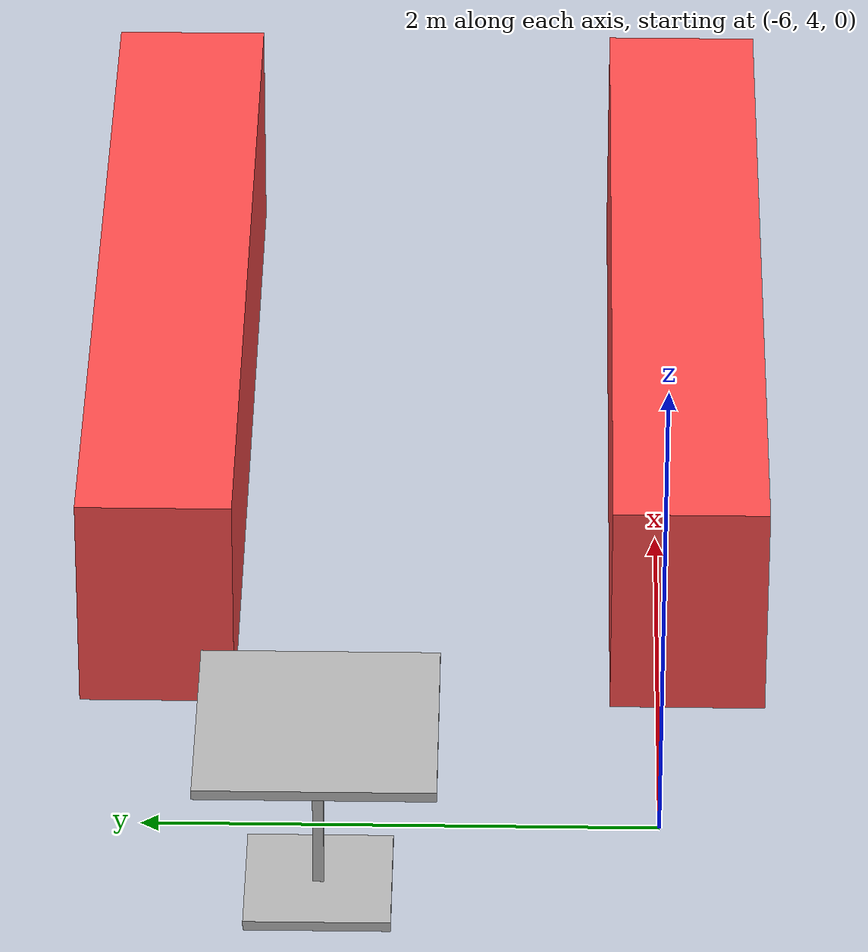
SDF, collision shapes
<?xml version='1.0'?>
<sdf version='1.6'>
  <model name='Cabinet'>
    <link name='link_0'>
      <pose frame=''>-3.41182 5.97323 0.500045 0 -0 0</pose>
      <inertial>
        <mass>1</mass>
        <inertia>
          <ixx>0.166667</ixx>
          <ixy>0</ixy>
          <ixz>0</ixz>
          <iyy>0.166667</iyy>
          <iyz>0</iyz>
          <izz>0.166667</izz>
        </inertia>
        <pose frame=''>0 0 0 0 -0 0</pose>
      </inertial>
      <self_collide>0</self_collide>
      <kinematic>0</kinematic>
      <gravity>1</gravity>
      <visual name='visual'>
        <pose frame=''>0 0 0 0 -0 0</pose>
        <geometry>
          <box>
            <size>3.66 0.61 0.91</size>
          </box>
        </geometry>
        <material>
          <lighting>1</lighting>
          <script>
            <uri>file://media/materials/scripts/gazebo.material</uri>
            <name>Gazebo/Grey</name>
          </script>
          <ambient>1 0.3 0.3 1</ambient>
          <diffuse>0.7 0.7 0.7 1</diffuse>
          <specular>0.01 0.01 0.01 1</specular>
          <emissive>0 0 0 1</emissive>
          <shader type='vertex'>
            <normal_map>__default__</normal_map>
          </shader>
        </material>
        <transparency>0</transparency>
        <cast_shadows>1</cast_shadows>
      </visual>
      <collision name='collision'>
        <laser_retro>0</laser_retro>
        <max_contacts>10</max_contacts>
        <pose frame=''>0 0 0 0 -0 0</pose>
        <geometry>
          <box>
            <size>3.66 0.61 0.91</size>
          </box>
        </geometry>
        <surface>
          <friction>
            <ode>
              <mu>1</mu>
              <mu2>1</mu2>
              <fdir1>0 0 0</fdir1>
              <slip1>0</slip1>
              <slip2>0</slip2>
            </ode>
            <torsional>
              <coefficient>1</coefficient>
              <patch_radius>0</patch_radius>
              <surface_radius>0</surface_radius>
              <use_patch_radius>1</use_patch_radius>
              <ode>
                <slip>0</slip>
              </ode>
            </torsional>
          </friction>
          <bounce>
            <restitution_coefficient>0</restitution_coefficient>
            <threshold>1e+06</threshold>
          </bounce>
          <contact>
            <collide_without_contact>0</collide_without_contact>
            <collide_without_contact_bitmask>1</collide_without_contact_bitmask>
            <collide_bitmask>1</collide_bitmask>
            <ode>
              <soft_cfm>0</soft_cfm>
              <soft_erp>0.2</soft_erp>
              <kp>1e+13</kp>
              <kd>1</kd>
              <max_vel>0.01</max_vel>
              <min_depth>0</min_depth>
            </ode>
            <bullet>
              <split_impulse>1</split_impulse>
              <split_impulse_penetration_threshold>-0.01</split_impulse_penetration_threshold>
              <soft_cfm>0</soft_cfm>
              <soft_erp>0.2</soft_erp>
              <kp>1e+13</kp>
              <kd>1</kd>
            </bullet>
          </contact>
        </surface>
      </collision>
    </link>
    <link name='link_0_clone'>
      <pose frame=''>-3.42196 3.88472 0.499027 -0 -0.000284 4.8e-05</pose>
      <inertial>
        <mass>1</mass>
        <inertia>
          <ixx>0.166667</ixx>
          <ixy>0</ixy>
          <ixz>0</ixz>
          <iyy>0.166667</iyy>
          <iyz>0</iyz>
          <izz>0.166667</izz>
        </inertia>
        <pose frame=''>0 0 0 0 -0 0</pose>
      </inertial>
      <self_collide>0</self_collide>
      <kinematic>0</kinematic>
      <visual name='visual'>
        <pose frame=''>0 0 0 0 -0 0</pose>
        <geometry>
          <box>
            <size>3.66 0.61 0.91</size>
          </box>
        </geometry>
        <material>
          <lighting>1</lighting>
          <script>
            <uri>file://media/materials/scripts/gazebo.material</uri>
            <name>Gazebo/Grey</name>
          </script>
          <ambient>1 0.3 0.3 1</ambient>
          <diffuse>0.7 0.7 0.7 1</diffuse>
          <specular>0.01 0.01 0.01 1</specular>
          <emissive>0 0 0 1</emissive>
          <shader type='vertex'>
            <normal_map>__default__</normal_map>
          </shader>
        </material>
        <transparency>0</transparency>
        <cast_shadows>1</cast_shadows>
      </visual>
      <collision name='collision'>
        <laser_retro>0</laser_retro>
        <max_contacts>10</max_contacts>
        <pose frame=''>0 0 0 0 -0 0</pose>
        <geometry>
          <box>
            <size>3.66 0.61 0.91</size>
          </box>
        </geometry>
        <surface>
          <friction>
            <ode>
              <mu>1</mu>
              <mu2>1</mu2>
              <fdir1>0 0 0</fdir1>
              <slip1>0</slip1>
              <slip2>0</slip2>
            </ode>
            <torsional>
              <coefficient>1</coefficient>
              <patch_radius>0</patch_radius>
              <surface_radius>0</surface_radius>
              <use_patch_radius>1</use_patch_radius>
              <ode>
                <slip>0</slip>
              </ode>
            </torsional>
          </friction>
          <bounce>
            <restitution_coefficient>0</restitution_coefficient>
            <threshold>1e+06</threshold>
          </bounce>
          <contact>
            <collide_without_contact>0</collide_without_contact>
            <collide_without_contact_bitmask>1</collide_without_contact_bitmask>
            <collide_bitmask>1</collide_bitmask>
            <ode>
              <soft_cfm>0</soft_cfm>
              <soft_erp>0.2</soft_erp>
              <kp>1e+13</kp>
              <kd>1</kd>
              <max_vel>0.01</max_vel>
              <min_depth>0</min_depth>
            </ode>
            <bullet>
              <split_impulse>1</split_impulse>
              <split_impulse_penetration_threshold>-0.01</split_impulse_penetration_threshold>
              <soft_cfm>0</soft_cfm>
              <soft_erp>0.2</soft_erp>
              <kp>1e+13</kp>
              <kd>1</kd>
            </bullet>
          </contact>
        </surface>
      </collision>
    </link>
    <model name='cafe_table'>
      <static>1</static>
      <link name='link'>
        <collision name='surface'>
          <pose frame=''>0 0 0.755 0 -0 0</pose>
          <geometry>
            <box>
              <size>0.913 0.913 0.04</size>
            </box>
          </geometry>
        </collision>
        <collision name='column'>
          <pose frame=''>0 0 0.37 0 -0 0</pose>
          <geometry>
            <box>
              <size>0.042 0.042 0.74</size>
            </box>
          </geometry>
        </collision>
        <collision name='base'>
          <pose frame=''>0 0 0.02 0 -0 0</pose>
          <geometry>
            <box>
              <size>0.56 0.56 0.04</size>
            </box>
          </geometry>
        </collision>
        <visual name='visual'>
          <geometry>
            <mesh>
              <uri>model://cafe_table/meshes/cafe_table.dae</uri>
            </mesh>
          </geometry>
        </visual>
      </link>
      <pose frame=''>-6.39581 5.3034 -0.001814 0 -0 0</pose>
    </model>
    <static>0</static>
    <allow_auto_disable>1</allow_auto_disable>
  </model>
</sdf>
